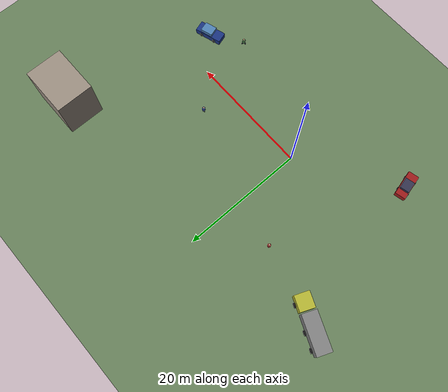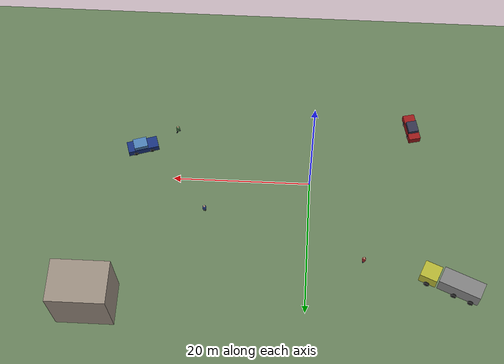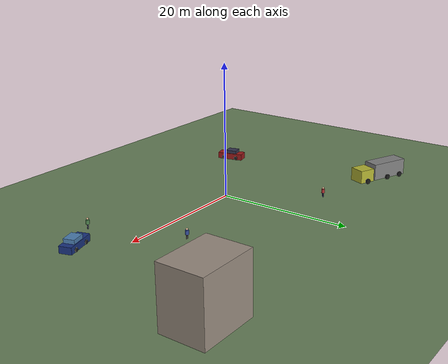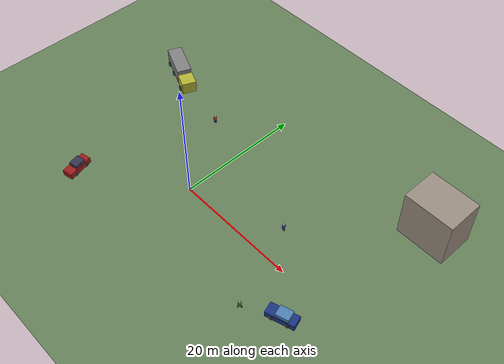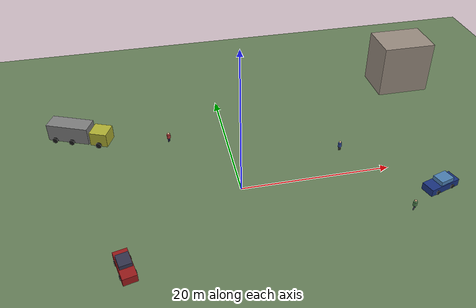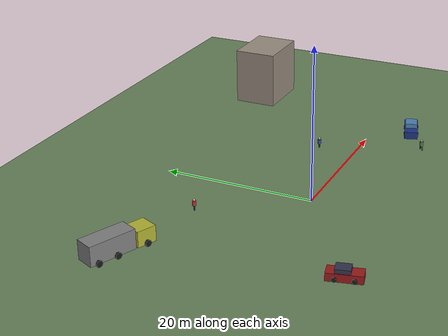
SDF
<sdf version="1.9">
 <world name="perception_test_world">
  <physics name="1ms" type="ignore">
   <max_step_size>0.001</max_step_size>
   <real_time_factor>1.0</real_time_factor>
  </physics>
  <plugin filename="gz-sim-physics-system" name="gz::sim::systems::Physics"/>
  <plugin filename="gz-sim-sensors-system" name="gz::sim::systems::Sensors">
   <render_engine>ogre2</render_engine>
  </plugin>
  <plugin filename="gz-sim-user-commands-system" name="gz::sim::systems::UserCommands"/>
  <plugin filename="gz-sim-scene-broadcaster-system" name="gz::sim::systems::SceneBroadcaster"/>
  <plugin filename="gz-sim-imu-system" name="gz::sim::systems::Imu"/>
  <plugin filename="gz-sim-navsat-system" name="gz::sim::systems::NavSat"/>
  <scene><ambient>1.0 1.0 1.0</ambient><background>0.6 0.8 1.0</background></scene>
  <spherical_coordinates>
   <latitude_deg>-35.363262</latitude_deg>
   <longitude_deg>149.165237</longitude_deg>
   <elevation>584</elevation>
   <heading_deg>0</heading_deg>
   <surface_model>EARTH_WGS84</surface_model>
  </spherical_coordinates>
  <light type="directional" name="sun">
   <pose>0 0 100 0 0 0</pose>
   <diffuse>0.9 0.9 0.9 1</diffuse>
   <specular>0.8 0.8 0.8 1</specular>
   <attenuation>
    <range>1000</range>
    <constant>0.9</constant>
    <linear>0.01</linear>
    <quadratic>0.001</quadratic>
   </attenuation>
   <direction>-0.5 0.1 -0.9</direction>
  </light>
  <model name="ground_plane">
   <static>true</static>
   <link name="link">
    <collision name="collision">
     <geometry><plane><normal>0 0 1</normal><size>200 200</size></plane></geometry>
    </collision>
    <visual name="visual">
     <geometry><plane><normal>0 0 1</normal><size>200 200</size></plane></geometry>
     <material><ambient>0.4 0.5 0.35 1</ambient><diffuse>0.4 0.5 0.35 1</diffuse></material>
    </visual>
   </link>
  </model>
  <model name="axes">
   <static>true</static>
   <link name="link">
    <visual name="x_axis">
     <cast_shadows>false</cast_shadows>
     <pose>5 0 0.1 0 0 0</pose>
     <geometry><box><size>10 0.05 0.05</size></box></geometry>
     <material><ambient>1 0 0 0.8</ambient><diffuse>1 0 0 0.8</diffuse></material>
    </visual>
    <visual name="y_axis">
     <cast_shadows>false</cast_shadows>
     <pose>0 5 0.1 0 0 0</pose>
     <geometry><box><size>0.05 10 0.05</size></box></geometry>
     <material><ambient>0 1 0 0.8</ambient><diffuse>0 1 0 0.8</diffuse></material>
    </visual>
   </link>
  </model>
  <model name="person_1">
   <static>true</static>
   <pose>15 5 0 0 0 0</pose>
   <link name="body">
    <visual name="torso">
     <pose>0 0 0.9 0 0 0</pose>
     <geometry><cylinder><radius>0.25</radius><length>0.6</length></cylinder></geometry>
     <material><ambient>0.2 0.3 0.6 1</ambient><diffuse>0.2 0.3 0.6 1</diffuse></material>
    </visual>
    <visual name="head">
     <pose>0 0 1.35 0 0 0</pose>
     <geometry><sphere><radius>0.15</radius></sphere></geometry>
     <material><ambient>0.9 0.75 0.6 1</ambient><diffuse>0.9 0.75 0.6 1</diffuse></material>
    </visual>
    <visual name="left_leg">
     <pose>-0.1 0 0.4 0 0 0</pose>
     <geometry><cylinder><radius>0.08</radius><length>0.8</length></cylinder></geometry>
     <material><ambient>0.3 0.3 0.3 1</ambient><diffuse>0.3 0.3 0.3 1</diffuse></material>
    </visual>
    <visual name="right_leg">
     <pose>0.1 0 0.4 0 0 0</pose>
     <geometry><cylinder><radius>0.08</radius><length>0.8</length></cylinder></geometry>
     <material><ambient>0.3 0.3 0.3 1</ambient><diffuse>0.3 0.3 0.3 1</diffuse></material>
    </visual>
   </link>
  </model>
  <model name="person_2">
   <static>true</static>
   <pose>-8 12 0 0 0 0.7</pose>
   <link name="body">
    <visual name="torso">
     <pose>0 0 0.9 0 0 0</pose>
     <geometry><cylinder><radius>0.25</radius><length>0.6</length></cylinder></geometry>
     <material><ambient>0.7 0.2 0.2 1</ambient><diffuse>0.7 0.2 0.2 1</diffuse></material>
    </visual>
    <visual name="head">
     <pose>0 0 1.35 0 0 0</pose>
     <geometry><sphere><radius>0.15</radius></sphere></geometry>
     <material><ambient>0.9 0.75 0.6 1</ambient><diffuse>0.9 0.75 0.6 1</diffuse></material>
    </visual>
    <visual name="left_leg">
     <pose>-0.1 0 0.4 0 0 0</pose>
     <geometry><cylinder><radius>0.08</radius><length>0.8</length></cylinder></geometry>
     <material><ambient>0.2 0.2 0.4 1</ambient><diffuse>0.2 0.2 0.4 1</diffuse></material>
    </visual>
    <visual name="right_leg">
     <pose>0.1 0 0.4 0 0 0</pose>
     <geometry><cylinder><radius>0.08</radius><length>0.8</length></cylinder></geometry>
     <material><ambient>0.2 0.2 0.4 1</ambient><diffuse>0.2 0.2 0.4 1</diffuse></material>
    </visual>
   </link>
  </model>
  <model name="person_3">
   <static>true</static>
   <pose>20 -8 0 0 0 -1.2</pose>
   <link name="body">
    <visual name="torso">
     <pose>0 0 0.9 0 0 0</pose>
     <geometry><cylinder><radius>0.25</radius><length>0.6</length></cylinder></geometry>
     <material><ambient>0.3 0.5 0.3 1</ambient><diffuse>0.3 0.5 0.3 1</diffuse></material>
    </visual>
    <visual name="head">
     <pose>0 0 1.35 0 0 0</pose>
     <geometry><sphere><radius>0.15</radius></sphere></geometry>
     <material><ambient>0.85 0.7 0.55 1</ambient><diffuse>0.85 0.7 0.55 1</diffuse></material>
    </visual>
    <visual name="left_leg">
     <pose>-0.1 0.15 0.4 0.3 0 0</pose>
     <geometry><cylinder><radius>0.08</radius><length>0.8</length></cylinder></geometry>
     <material><ambient>0.25 0.25 0.35 1</ambient><diffuse>0.25 0.25 0.35 1</diffuse></material>
    </visual>
    <visual name="right_leg">
     <pose>0.1 -0.15 0.4 -0.3 0 0</pose>
     <geometry><cylinder><radius>0.08</radius><length>0.8</length></cylinder></geometry>
     <material><ambient>0.25 0.25 0.35 1</ambient><diffuse>0.25 0.25 0.35 1</diffuse></material>
    </visual>
   </link>
  </model>
  <model name="car_1">
   <static>true</static>
   <pose>25 -5 0 0 0 0.3</pose>
   <link name="body">
    <visual name="chassis">
     <pose>0 0 0.5 0 0 0</pose>
     <geometry><box><size>4.5 1.8 1.0</size></box></geometry>
     <material><ambient>0.1 0.2 0.5 1</ambient><diffuse>0.1 0.2 0.5 1</diffuse></material>
    </visual>
    <visual name="cabin">
     <pose>0.3 0 1.2 0 0 0</pose>
     <geometry><box><size>2.0 1.6 0.8</size></box></geometry>
     <material><ambient>0.3 0.5 0.7 1</ambient><diffuse>0.3 0.5 0.7 1</diffuse></material>
    </visual>
    <visual name="wheel_fl">
     <pose>1.2 0.9 0.3 1.5708 0 0</pose>
     <geometry><cylinder><radius>0.3</radius><length>0.2</length></cylinder></geometry>
     <material><ambient>0.1 0.1 0.1 1</ambient><diffuse>0.1 0.1 0.1 1</diffuse></material>
    </visual>
    <visual name="wheel_fr">
     <pose>1.2 -0.9 0.3 1.5708 0 0</pose>
     <geometry><cylinder><radius>0.3</radius><length>0.2</length></cylinder></geometry>
     <material><ambient>0.1 0.1 0.1 1</ambient><diffuse>0.1 0.1 0.1 1</diffuse></material>
    </visual>
    <visual name="wheel_rl">
     <pose>-1.2 0.9 0.3 1.5708 0 0</pose>
     <geometry><cylinder><radius>0.3</radius><length>0.2</length></cylinder></geometry>
     <material><ambient>0.1 0.1 0.1 1</ambient><diffuse>0.1 0.1 0.1 1</diffuse></material>
    </visual>
    <visual name="wheel_rr">
     <pose>-1.2 -0.9 0.3 1.5708 0 0</pose>
     <geometry><cylinder><radius>0.3</radius><length>0.2</length></cylinder></geometry>
     <material><ambient>0.1 0.1 0.1 1</ambient><diffuse>0.1 0.1 0.1 1</diffuse></material>
    </visual>
   </link>
  </model>
  <model name="car_2">
   <static>true</static>
   <pose>-15 -10 0 0 0 1.8</pose>
   <link name="body">
    <visual name="chassis">
     <pose>0 0 0.5 0 0 0</pose>
     <geometry><box><size>4.2 1.7 1.0</size></box></geometry>
     <material><ambient>0.6 0.1 0.1 1</ambient><diffuse>0.6 0.1 0.1 1</diffuse></material>
    </visual>
    <visual name="cabin">
     <pose>0.2 0 1.15 0 0 0</pose>
     <geometry><box><size>1.8 1.5 0.7</size></box></geometry>
     <material><ambient>0.2 0.2 0.3 1</ambient><diffuse>0.2 0.2 0.3 1</diffuse></material>
    </visual>
    <visual name="wheel_fl">
     <pose>1.1 0.85 0.3 1.5708 0 0</pose>
     <geometry><cylinder><radius>0.3</radius><length>0.2</length></cylinder></geometry>
     <material><ambient>0.1 0.1 0.1 1</ambient></material>
    </visual>
    <visual name="wheel_fr">
     <pose>1.1 -0.85 0.3 1.5708 0 0</pose>
     <geometry><cylinder><radius>0.3</radius><length>0.2</length></cylinder></geometry>
     <material><ambient>0.1 0.1 0.1 1</ambient></material>
    </visual>
    <visual name="wheel_rl">
     <pose>-1.1 0.85 0.3 1.5708 0 0</pose>
     <geometry><cylinder><radius>0.3</radius><length>0.2</length></cylinder></geometry>
     <material><ambient>0.1 0.1 0.1 1</ambient></material>
    </visual>
    <visual name="wheel_rr">
     <pose>-1.1 -0.85 0.3 1.5708 0 0</pose>
     <geometry><cylinder><radius>0.3</radius><length>0.2</length></cylinder></geometry>
     <material><ambient>0.1 0.1 0.1 1</ambient></material>
    </visual>
   </link>
  </model>
  <model name="truck_1">
   <static>true</static>
   <pose>-20 15 0 0 0 -0.4</pose>
   <link name="body">
    <visual name="cab">
     <pose>3.0 0 1.2 0 0 0</pose>
     <geometry><box><size>2.5 2.4 2.0</size></box></geometry>
     <material><ambient>0.7 0.7 0.2 1</ambient><diffuse>0.7 0.7 0.2 1</diffuse></material>
    </visual>
    <visual name="cargo">
     <pose>-1.5 0 1.5 0 0 0</pose>
     <geometry><box><size>6.0 2.4 2.5</size></box></geometry>
     <material><ambient>0.5 0.5 0.5 1</ambient><diffuse>0.5 0.5 0.5 1</diffuse></material>
    </visual>
    <visual name="wheel_fl">
     <pose>3.0 1.3 0.4 1.5708 0 0</pose>
     <geometry><cylinder><radius>0.4</radius><length>0.3</length></cylinder></geometry>
     <material><ambient>0.1 0.1 0.1 1</ambient></material>
    </visual>
    <visual name="wheel_fr">
     <pose>3.0 -1.3 0.4 1.5708 0 0</pose>
     <geometry><cylinder><radius>0.4</radius><length>0.3</length></cylinder></geometry>
     <material><ambient>0.1 0.1 0.1 1</ambient></material>
    </visual>
    <visual name="wheel_ml">
     <pose>-1.0 1.3 0.4 1.5708 0 0</pose>
     <geometry><cylinder><radius>0.4</radius><length>0.3</length></cylinder></geometry>
     <material><ambient>0.1 0.1 0.1 1</ambient></material>
    </visual>
    <visual name="wheel_mr">
     <pose>-1.0 -1.3 0.4 1.5708 0 0</pose>
     <geometry><cylinder><radius>0.4</radius><length>0.3</length></cylinder></geometry>
     <material><ambient>0.1 0.1 0.1 1</ambient></material>
    </visual>
    <visual name="wheel_rl">
     <pose>-3.5 1.3 0.4 1.5708 0 0</pose>
     <geometry><cylinder><radius>0.4</radius><length>0.3</length></cylinder></geometry>
     <material><ambient>0.1 0.1 0.1 1</ambient></material>
    </visual>
    <visual name="wheel_rr">
     <pose>-3.5 -1.3 0.4 1.5708 0 0</pose>
     <geometry><cylinder><radius>0.4</radius><length>0.3</length></cylinder></geometry>
     <material><ambient>0.1 0.1 0.1 1</ambient></material>
    </visual>
   </link>
  </model>
  <model name="building_1">
   <static>true</static>
   <pose>30 20 0 0 0 0</pose>
   <link name="body">
    <visual name="main">
     <pose>0 0 4 0 0 0</pose>
     <geometry><box><size>8 6 8</size></box></geometry>
     <material><ambient>0.6 0.55 0.5 1</ambient><diffuse>0.6 0.55 0.5 1</diffuse></material>
    </visual>
   </link>
  </model>
 </world>
</sdf>
